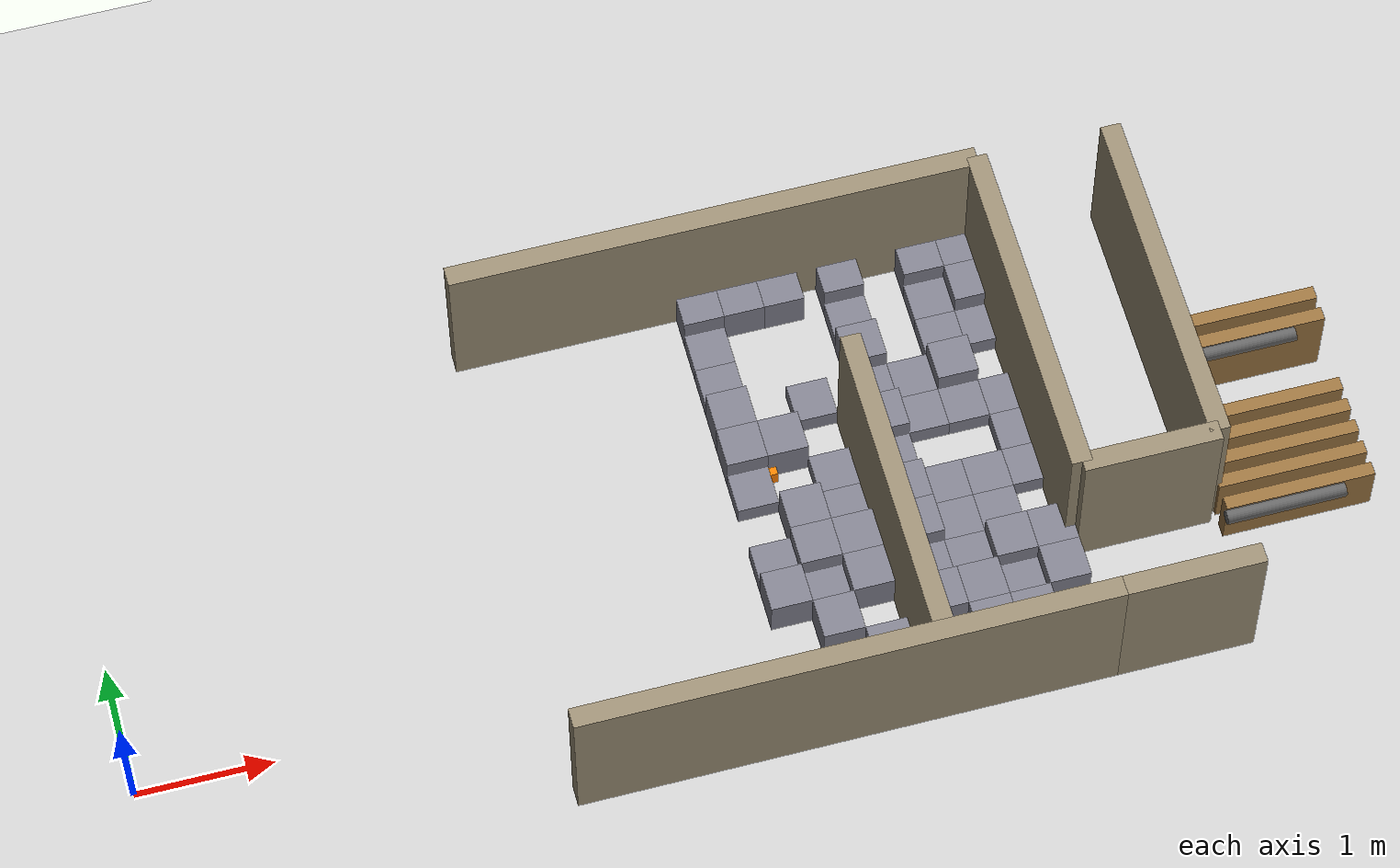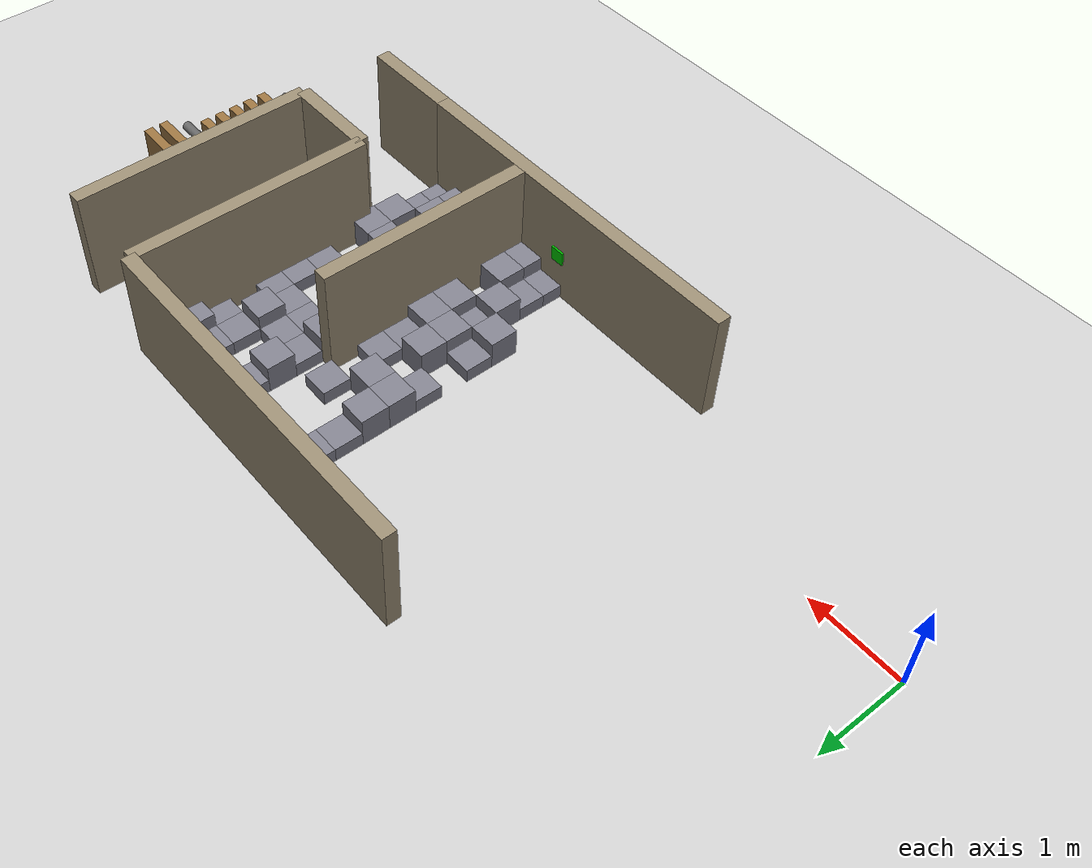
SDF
<sdf version="1.6">
 <world name="lrc_2026">
  <model name="ground_plane">
   <static>true</static>
   <link name="link">
    <collision name="collision">
     <geometry><plane><normal>0 0 1</normal><size>50 50</size></plane></geometry>
    </collision>
    <visual name="visual">
     <geometry><plane><normal>0 0 1</normal><size>50 50</size></plane></geometry>
     <material><ambient>0.8 0.8 0.8 1</ambient><diffuse>0.8 0.8 0.8 1</diffuse></material>
    </visual>
   </link>
  </model>
  <model name="LD_S">
   <static>true</static>
   <pose>4.9000 -0.8000 0.6000 0.0000 0.0000 0.0000</pose>
   <link name="link">
    <collision name="col"><geometry><box><size>3.9000 0.1500 1.2000</size></box></geometry></collision>
    <visual name="vis">
     <geometry><box><size>3.9000 0.1500 1.2000</size></box></geometry>
     <material><ambient>0.6 0.55 0.45 1.0</ambient><diffuse>0.6 0.55 0.45 1.0</diffuse></material>
    </visual>
   </link>
  </model>
  <model name="LD_N">
   <static>true</static>
   <pose>4.9000 2.8000 0.6000 0.0000 0.0000 0.0000</pose>
   <link name="link">
    <collision name="col"><geometry><box><size>3.9000 0.1500 1.2000</size></box></geometry></collision>
    <visual name="vis">
     <geometry><box><size>3.9000 0.1500 1.2000</size></box></geometry>
     <material><ambient>0.6 0.55 0.45 1.0</ambient><diffuse>0.6 0.55 0.45 1.0</diffuse></material>
    </visual>
   </link>
  </model>
  <model name="LD_E_b">
   <static>true</static>
   <pose>6.8500 1.5000 0.6000 0.0000 0.0000 0.0000</pose>
   <link name="link">
    <collision name="col"><geometry><box><size>0.1500 2.6000 1.2000</size></box></geometry></collision>
    <visual name="vis">
     <geometry><box><size>0.1500 2.6000 1.2000</size></box></geometry>
     <material><ambient>0.6 0.55 0.45 1.0</ambient><diffuse>0.6 0.55 0.45 1.0</diffuse></material>
    </visual>
   </link>
  </model>
  <model name="LD_d1">
   <static>true</static>
   <pose>5.5750 0.4000 0.6000 0.0000 0.0000 0.0000</pose>
   <link name="link">
    <collision name="col"><geometry><box><size>0.1500 2.4000 1.2000</size></box></geometry></collision>
    <visual name="vis">
     <geometry><box><size>0.1500 2.4000 1.2000</size></box></geometry>
     <material><ambient>0.6 0.55 0.45 1.0</ambient><diffuse>0.6 0.55 0.45 1.0</diffuse></material>
    </visual>
   </link>
  </model>
  <model name="sf_1_1_3">
   <static>true</static>
   <pose>4.7500 0.2500 0.1500 0.0000 0.0000 0.0000</pose>
   <link name="link">
    <collision name="col"><geometry><box><size>0.3000 0.3000 0.3000</size></box></geometry></collision>
    <visual name="vis">
     <geometry><box><size>0.3000 0.3000 0.3000</size></box></geometry>
     <material><ambient>0.5 0.5 0.55 1.0</ambient><diffuse>0.5 0.5 0.55 1.0</diffuse></material>
    </visual>
   </link>
  </model>
  <model name="sf_1_1_4">
   <static>true</static>
   <pose>4.7500 0.5500 0.0750 0.0000 0.0000 0.0000</pose>
   <link name="link">
    <collision name="col"><geometry><box><size>0.3000 0.3000 0.1500</size></box></geometry></collision>
    <visual name="vis">
     <geometry><box><size>0.3000 0.3000 0.1500</size></box></geometry>
     <material><ambient>0.5 0.5 0.55 1.0</ambient><diffuse>0.5 0.5 0.55 1.0</diffuse></material>
    </visual>
   </link>
  </model>
  <model name="sf_1_1_6">
   <static>true</static>
   <pose>4.7500 1.1500 0.0750 0.0000 0.0000 0.0000</pose>
   <link name="link">
    <collision name="col"><geometry><box><size>0.3000 0.3000 0.1500</size></box></geometry></collision>
    <visual name="vis">
     <geometry><box><size>0.3000 0.3000 0.1500</size></box></geometry>
     <material><ambient>0.5 0.5 0.55 1.0</ambient><diffuse>0.5 0.5 0.55 1.0</diffuse></material>
    </visual>
   </link>
  </model>
  <model name="sf_1_1_7">
   <static>true</static>
   <pose>4.7500 1.4500 0.1500 0.0000 0.0000 0.0000</pose>
   <link name="link">
    <collision name="col"><geometry><box><size>0.3000 0.3000 0.3000</size></box></geometry></collision>
    <visual name="vis">
     <geometry><box><size>0.3000 0.3000 0.3000</size></box></geometry>
     <material><ambient>0.5 0.5 0.55 1.0</ambient><diffuse>0.5 0.5 0.55 1.0</diffuse></material>
    </visual>
   </link>
  </model>
  <model name="sf_1_1_8">
   <static>true</static>
   <pose>4.7500 1.7500 0.1500 0.0000 0.0000 0.0000</pose>
   <link name="link">
    <collision name="col"><geometry><box><size>0.3000 0.3000 0.3000</size></box></geometry></collision>
    <visual name="vis">
     <geometry><box><size>0.3000 0.3000 0.3000</size></box></geometry>
     <material><ambient>0.5 0.5 0.55 1.0</ambient><diffuse>0.5 0.5 0.55 1.0</diffuse></material>
    </visual>
   </link>
  </model>
  <model name="sf_1_1_9">
   <static>true</static>
   <pose>4.7500 2.0500 0.0750 0.0000 0.0000 0.0000</pose>
   <link name="link">
    <collision name="col"><geometry><box><size>0.3000 0.3000 0.1500</size></box></geometry></collision>
    <visual name="vis">
     <geometry><box><size>0.3000 0.3000 0.1500</size></box></geometry>
     <material><ambient>0.5 0.5 0.55 1.0</ambient><diffuse>0.5 0.5 0.55 1.0</diffuse></material>
    </visual>
   </link>
  </model>
  <model name="sf_1_1_10">
   <static>true</static>
   <pose>4.7500 2.3500 0.0750 0.0000 0.0000 0.0000</pose>
   <link name="link">
    <collision name="col"><geometry><box><size>0.3000 0.3000 0.1500</size></box></geometry></collision>
    <visual name="vis">
     <geometry><box><size>0.3000 0.3000 0.1500</size></box></geometry>
     <material><ambient>0.5 0.5 0.55 1.0</ambient><diffuse>0.5 0.5 0.55 1.0</diffuse></material>
    </visual>
   </link>
  </model>
  <model name="sf_1_1_11">
   <static>true</static>
   <pose>4.7500 2.6500 0.1500 0.0000 0.0000 0.0000</pose>
   <link name="link">
    <collision name="col"><geometry><box><size>0.3000 0.3000 0.3000</size></box></geometry></collision>
    <visual name="vis">
     <geometry><box><size>0.3000 0.3000 0.3000</size></box></geometry>
     <material><ambient>0.5 0.5 0.55 1.0</ambient><diffuse>0.5 0.5 0.55 1.0</diffuse></material>
    </visual>
   </link>
  </model>
  <model name="sf_1_2_0">
   <static>true</static>
   <pose>5.0500 -0.6500 0.0750 0.0000 0.0000 0.0000</pose>
   <link name="link">
    <collision name="col"><geometry><box><size>0.3000 0.3000 0.1500</size></box></geometry></collision>
    <visual name="vis">
     <geometry><box><size>0.3000 0.3000 0.1500</size></box></geometry>
     <material><ambient>0.5 0.5 0.55 1.0</ambient><diffuse>0.5 0.5 0.55 1.0</diffuse></material>
    </visual>
   </link>
  </model>
  <model name="sf_1_2_1">
   <static>true</static>
   <pose>5.0500 -0.3500 0.0750 0.0000 0.0000 0.0000</pose>
   <link name="link">
    <collision name="col"><geometry><box><size>0.3000 0.3000 0.1500</size></box></geometry></collision>
    <visual name="vis">
     <geometry><box><size>0.3000 0.3000 0.1500</size></box></geometry>
     <material><ambient>0.5 0.5 0.55 1.0</ambient><diffuse>0.5 0.5 0.55 1.0</diffuse></material>
    </visual>
   </link>
  </model>
  <model name="sf_1_2_2">
   <static>true</static>
   <pose>5.0500 -0.0500 0.1500 0.0000 0.0000 0.0000</pose>
   <link name="link">
    <collision name="col"><geometry><box><size>0.3000 0.3000 0.3000</size></box></geometry></collision>
    <visual name="vis">
     <geometry><box><size>0.3000 0.3000 0.3000</size></box></geometry>
     <material><ambient>0.5 0.5 0.55 1.0</ambient><diffuse>0.5 0.5 0.55 1.0</diffuse></material>
    </visual>
   </link>
  </model>
  <model name="sf_1_2_3">
   <static>true</static>
   <pose>5.0500 0.2500 0.0750 0.0000 0.0000 0.0000</pose>
   <link name="link">
    <collision name="col"><geometry><box><size>0.3000 0.3000 0.1500</size></box></geometry></collision>
    <visual name="vis">
     <geometry><box><size>0.3000 0.3000 0.1500</size></box></geometry>
     <material><ambient>0.5 0.5 0.55 1.0</ambient><diffuse>0.5 0.5 0.55 1.0</diffuse></material>
    </visual>
   </link>
  </model>
  <model name="sf_1_2_4">
   <static>true</static>
   <pose>5.0500 0.5500 0.1500 0.0000 0.0000 0.0000</pose>
   <link name="link">
    <collision name="col"><geometry><box><size>0.3000 0.3000 0.3000</size></box></geometry></collision>
    <visual name="vis">
     <geometry><box><size>0.3000 0.3000 0.3000</size></box></geometry>
     <material><ambient>0.5 0.5 0.55 1.0</ambient><diffuse>0.5 0.5 0.55 1.0</diffuse></material>
    </visual>
   </link>
  </model>
  <model name="sf_1_2_5">
   <static>true</static>
   <pose>5.0500 0.8500 0.1500 0.0000 0.0000 0.0000</pose>
   <link name="link">
    <collision name="col"><geometry><box><size>0.3000 0.3000 0.3000</size></box></geometry></collision>
    <visual name="vis">
     <geometry><box><size>0.3000 0.3000 0.3000</size></box></geometry>
     <material><ambient>0.5 0.5 0.55 1.0</ambient><diffuse>0.5 0.5 0.55 1.0</diffuse></material>
    </visual>
   </link>
  </model>
  <model name="sf_1_2_7">
   <static>true</static>
   <pose>5.0500 1.4500 0.1500 0.0000 0.0000 0.0000</pose>
   <link name="link">
    <collision name="col"><geometry><box><size>0.3000 0.3000 0.3000</size></box></geometry></collision>
    <visual name="vis">
     <geometry><box><size>0.3000 0.3000 0.3000</size></box></geometry>
     <material><ambient>0.5 0.5 0.55 1.0</ambient><diffuse>0.5 0.5 0.55 1.0</diffuse></material>
    </visual>
   </link>
  </model>
  <model name="sf_1_2_11">
   <static>true</static>
   <pose>5.0500 2.6500 0.1500 0.0000 0.0000 0.0000</pose>
   <link name="link">
    <collision name="col"><geometry><box><size>0.3000 0.3000 0.3000</size></box></geometry></collision>
    <visual name="vis">
     <geometry><box><size>0.3000 0.3000 0.3000</size></box></geometry>
     <material><ambient>0.5 0.5 0.55 1.0</ambient><diffuse>0.5 0.5 0.55 1.0</diffuse></material>
    </visual>
   </link>
  </model>
  <model name="sf_1_3_0">
   <static>true</static>
   <pose>5.3500 -0.6500 0.1500 0.0000 0.0000 0.0000</pose>
   <link name="link">
    <collision name="col"><geometry><box><size>0.3000 0.3000 0.3000</size></box></geometry></collision>
    <visual name="vis">
     <geometry><box><size>0.3000 0.3000 0.3000</size></box></geometry>
     <material><ambient>0.5 0.5 0.55 1.0</ambient><diffuse>0.5 0.5 0.55 1.0</diffuse></material>
    </visual>
   </link>
  </model>
  <model name="sf_1_3_1">
   <static>true</static>
   <pose>5.3500 -0.3500 0.1500 0.0000 0.0000 0.0000</pose>
   <link name="link">
    <collision name="col"><geometry><box><size>0.3000 0.3000 0.3000</size></box></geometry></collision>
    <visual name="vis">
     <geometry><box><size>0.3000 0.3000 0.3000</size></box></geometry>
     <material><ambient>0.5 0.5 0.55 1.0</ambient><diffuse>0.5 0.5 0.55 1.0</diffuse></material>
    </visual>
   </link>
  </model>
  <model name="sf_1_3_3">
   <static>true</static>
   <pose>5.3500 0.2500 0.1500 0.0000 0.0000 0.0000</pose>
   <link name="link">
    <collision name="col"><geometry><box><size>0.3000 0.3000 0.3000</size></box></geometry></collision>
    <visual name="vis">
     <geometry><box><size>0.3000 0.3000 0.3000</size></box></geometry>
     <material><ambient>0.5 0.5 0.55 1.0</ambient><diffuse>0.5 0.5 0.55 1.0</diffuse></material>
    </visual>
   </link>
  </model>
  <model name="sf_1_3_4">
   <static>true</static>
   <pose>5.3500 0.5500 0.1500 0.0000 0.0000 0.0000</pose>
   <link name="link">
    <collision name="col"><geometry><box><size>0.3000 0.3000 0.3000</size></box></geometry></collision>
    <visual name="vis">
     <geometry><box><size>0.3000 0.3000 0.3000</size></box></geometry>
     <material><ambient>0.5 0.5 0.55 1.0</ambient><diffuse>0.5 0.5 0.55 1.0</diffuse></material>
    </visual>
   </link>
  </model>
  <model name="sf_1_3_5">
   <static>true</static>
   <pose>5.3500 0.8500 0.0750 0.0000 0.0000 0.0000</pose>
   <link name="link">
    <collision name="col"><geometry><box><size>0.3000 0.3000 0.1500</size></box></geometry></collision>
    <visual name="vis">
     <geometry><box><size>0.3000 0.3000 0.1500</size></box></geometry>
     <material><ambient>0.5 0.5 0.55 1.0</ambient><diffuse>0.5 0.5 0.55 1.0</diffuse></material>
    </visual>
   </link>
  </model>
  <model name="sf_1_3_6">
   <static>true</static>
   <pose>5.3500 1.1500 0.0750 0.0000 0.0000 0.0000</pose>
   <link name="link">
    <collision name="col"><geometry><box><size>0.3000 0.3000 0.1500</size></box></geometry></collision>
    <visual name="vis">
     <geometry><box><size>0.3000 0.3000 0.1500</size></box></geometry>
     <material><ambient>0.5 0.5 0.55 1.0</ambient><diffuse>0.5 0.5 0.55 1.0</diffuse></material>
    </visual>
   </link>
  </model>
  <model name="sf_1_3_8">
   <static>true</static>
   <pose>5.3500 1.7500 0.0750 0.0000 0.0000 0.0000</pose>
   <link name="link">
    <collision name="col"><geometry><box><size>0.3000 0.3000 0.1500</size></box></geometry></collision>
    <visual name="vis">
     <geometry><box><size>0.3000 0.3000 0.1500</size></box></geometry>
     <material><ambient>0.5 0.5 0.55 1.0</ambient><diffuse>0.5 0.5 0.55 1.0</diffuse></material>
    </visual>
   </link>
  </model>
  <model name="sf_1_3_11">
   <static>true</static>
   <pose>5.3500 2.6500 0.1500 0.0000 0.0000 0.0000</pose>
   <link name="link">
    <collision name="col"><geometry><box><size>0.3000 0.3000 0.3000</size></box></geometry></collision>
    <visual name="vis">
     <geometry><box><size>0.3000 0.3000 0.3000</size></box></geometry>
     <material><ambient>0.5 0.5 0.55 1.0</ambient><diffuse>0.5 0.5 0.55 1.0</diffuse></material>
    </visual>
   </link>
  </model>
  <model name="sf_2_0_0">
   <static>true</static>
   <pose>5.8000 -0.6500 0.1500 0.0000 0.0000 0.0000</pose>
   <link name="link">
    <collision name="col"><geometry><box><size>0.3000 0.3000 0.3000</size></box></geometry></collision>
    <visual name="vis">
     <geometry><box><size>0.3000 0.3000 0.3000</size></box></geometry>
     <material><ambient>0.5 0.5 0.55 1.0</ambient><diffuse>0.5 0.5 0.55 1.0</diffuse></material>
    </visual>
   </link>
  </model>
  <model name="sf_2_0_1">
   <static>true</static>
   <pose>5.8000 -0.3500 0.0750 0.0000 0.0000 0.0000</pose>
   <link name="link">
    <collision name="col"><geometry><box><size>0.3000 0.3000 0.1500</size></box></geometry></collision>
    <visual name="vis">
     <geometry><box><size>0.3000 0.3000 0.1500</size></box></geometry>
     <material><ambient>0.5 0.5 0.55 1.0</ambient><diffuse>0.5 0.5 0.55 1.0</diffuse></material>
    </visual>
   </link>
  </model>
  <model name="sf_2_0_2">
   <static>true</static>
   <pose>5.8000 -0.0500 0.1500 0.0000 0.0000 0.0000</pose>
   <link name="link">
    <collision name="col"><geometry><box><size>0.3000 0.3000 0.3000</size></box></geometry></collision>
    <visual name="vis">
     <geometry><box><size>0.3000 0.3000 0.3000</size></box></geometry>
     <material><ambient>0.5 0.5 0.55 1.0</ambient><diffuse>0.5 0.5 0.55 1.0</diffuse></material>
    </visual>
   </link>
  </model>
  <model name="sf_2_0_3">
   <static>true</static>
   <pose>5.8000 0.2500 0.0750 0.0000 0.0000 0.0000</pose>
   <link name="link">
    <collision name="col"><geometry><box><size>0.3000 0.3000 0.1500</size></box></geometry></collision>
    <visual name="vis">
     <geometry><box><size>0.3000 0.3000 0.1500</size></box></geometry>
     <material><ambient>0.5 0.5 0.55 1.0</ambient><diffuse>0.5 0.5 0.55 1.0</diffuse></material>
    </visual>
   </link>
  </model>
  <model name="sf_2_0_4">
   <static>true</static>
   <pose>5.8000 0.5500 0.1500 0.0000 0.0000 0.0000</pose>
   <link name="link">
    <collision name="col"><geometry><box><size>0.3000 0.3000 0.3000</size></box></geometry></collision>
    <visual name="vis">
     <geometry><box><size>0.3000 0.3000 0.3000</size></box></geometry>
     <material><ambient>0.5 0.5 0.55 1.0</ambient><diffuse>0.5 0.5 0.55 1.0</diffuse></material>
    </visual>
   </link>
  </model>
  <model name="sf_2_0_5">
   <static>true</static>
   <pose>5.8000 0.8500 0.1500 0.0000 0.0000 0.0000</pose>
   <link name="link">
    <collision name="col"><geometry><box><size>0.3000 0.3000 0.3000</size></box></geometry></collision>
    <visual name="vis">
     <geometry><box><size>0.3000 0.3000 0.3000</size></box></geometry>
     <material><ambient>0.5 0.5 0.55 1.0</ambient><diffuse>0.5 0.5 0.55 1.0</diffuse></material>
    </visual>
   </link>
  </model>
  <model name="sf_2_0_6">
   <static>true</static>
   <pose>5.8000 1.1500 0.0750 0.0000 0.0000 0.0000</pose>
   <link name="link">
    <collision name="col"><geometry><box><size>0.3000 0.3000 0.1500</size></box></geometry></collision>
    <visual name="vis">
     <geometry><box><size>0.3000 0.3000 0.1500</size></box></geometry>
     <material><ambient>0.5 0.5 0.55 1.0</ambient><diffuse>0.5 0.5 0.55 1.0</diffuse></material>
    </visual>
   </link>
  </model>
  <model name="sf_2_0_7">
   <static>true</static>
   <pose>5.8000 1.4500 0.1500 0.0000 0.0000 0.0000</pose>
   <link name="link">
    <collision name="col"><geometry><box><size>0.3000 0.3000 0.3000</size></box></geometry></collision>
    <visual name="vis">
     <geometry><box><size>0.3000 0.3000 0.3000</size></box></geometry>
     <material><ambient>0.5 0.5 0.55 1.0</ambient><diffuse>0.5 0.5 0.55 1.0</diffuse></material>
    </visual>
   </link>
  </model>
  <model name="sf_2_0_8">
   <static>true</static>
   <pose>5.8000 1.7500 0.0750 0.0000 0.0000 0.0000</pose>
   <link name="link">
    <collision name="col"><geometry><box><size>0.3000 0.3000 0.1500</size></box></geometry></collision>
    <visual name="vis">
     <geometry><box><size>0.3000 0.3000 0.1500</size></box></geometry>
     <material><ambient>0.5 0.5 0.55 1.0</ambient><diffuse>0.5 0.5 0.55 1.0</diffuse></material>
    </visual>
   </link>
  </model>
  <model name="sf_2_0_9">
   <static>true</static>
   <pose>5.8000 2.0500 0.1500 0.0000 0.0000 0.0000</pose>
   <link name="link">
    <collision name="col"><geometry><box><size>0.3000 0.3000 0.3000</size></box></geometry></collision>
    <visual name="vis">
     <geometry><box><size>0.3000 0.3000 0.3000</size></box></geometry>
     <material><ambient>0.5 0.5 0.55 1.0</ambient><diffuse>0.5 0.5 0.55 1.0</diffuse></material>
    </visual>
   </link>
  </model>
  <model name="sf_2_0_10">
   <static>true</static>
   <pose>5.8000 2.3500 0.0750 0.0000 0.0000 0.0000</pose>
   <link name="link">
    <collision name="col"><geometry><box><size>0.3000 0.3000 0.1500</size></box></geometry></collision>
    <visual name="vis">
     <geometry><box><size>0.3000 0.3000 0.1500</size></box></geometry>
     <material><ambient>0.5 0.5 0.55 1.0</ambient><diffuse>0.5 0.5 0.55 1.0</diffuse></material>
    </visual>
   </link>
  </model>
  <model name="sf_2_0_11">
   <static>true</static>
   <pose>5.8000 2.6500 0.1500 0.0000 0.0000 0.0000</pose>
   <link name="link">
    <collision name="col"><geometry><box><size>0.3000 0.3000 0.3000</size></box></geometry></collision>
    <visual name="vis">
     <geometry><box><size>0.3000 0.3000 0.3000</size></box></geometry>
     <material><ambient>0.5 0.5 0.55 1.0</ambient><diffuse>0.5 0.5 0.55 1.0</diffuse></material>
    </visual>
   </link>
  </model>
  <model name="sf_2_1_0">
   <static>true</static>
   <pose>6.1000 -0.6500 0.1500 0.0000 0.0000 0.0000</pose>
   <link name="link">
    <collision name="col"><geometry><box><size>0.3000 0.3000 0.3000</size></box></geometry></collision>
    <visual name="vis">
     <geometry><box><size>0.3000 0.3000 0.3000</size></box></geometry>
     <material><ambient>0.5 0.5 0.55 1.0</ambient><diffuse>0.5 0.5 0.55 1.0</diffuse></material>
    </visual>
   </link>
  </model>
  <model name="sf_2_1_1">
   <static>true</static>
   <pose>6.1000 -0.3500 0.1500 0.0000 0.0000 0.0000</pose>
   <link name="link">
    <collision name="col"><geometry><box><size>0.3000 0.3000 0.3000</size></box></geometry></collision>
    <visual name="vis">
     <geometry><box><size>0.3000 0.3000 0.3000</size></box></geometry>
     <material><ambient>0.5 0.5 0.55 1.0</ambient><diffuse>0.5 0.5 0.55 1.0</diffuse></material>
    </visual>
   </link>
  </model>
  <model name="sf_2_1_2">
   <static>true</static>
   <pose>6.1000 -0.0500 0.1500 0.0000 0.0000 0.0000</pose>
   <link name="link">
    <collision name="col"><geometry><box><size>0.3000 0.3000 0.3000</size></box></geometry></collision>
    <visual name="vis">
     <geometry><box><size>0.3000 0.3000 0.3000</size></box></geometry>
     <material><ambient>0.5 0.5 0.55 1.0</ambient><diffuse>0.5 0.5 0.55 1.0</diffuse></material>
    </visual>
   </link>
  </model>
  <model name="sf_2_1_3">
   <static>true</static>
   <pose>6.1000 0.2500 0.0750 0.0000 0.0000 0.0000</pose>
   <link name="link">
    <collision name="col"><geometry><box><size>0.3000 0.3000 0.1500</size></box></geometry></collision>
    <visual name="vis">
     <geometry><box><size>0.3000 0.3000 0.1500</size></box></geometry>
     <material><ambient>0.5 0.5 0.55 1.0</ambient><diffuse>0.5 0.5 0.55 1.0</diffuse></material>
    </visual>
   </link>
  </model>
  <model name="sf_2_1_4">
   <static>true</static>
   <pose>6.1000 0.5500 0.0750 0.0000 0.0000 0.0000</pose>
   <link name="link">
    <collision name="col"><geometry><box><size>0.3000 0.3000 0.1500</size></box></geometry></collision>
    <visual name="vis">
     <geometry><box><size>0.3000 0.3000 0.1500</size></box></geometry>
     <material><ambient>0.5 0.5 0.55 1.0</ambient><diffuse>0.5 0.5 0.55 1.0</diffuse></material>
    </visual>
   </link>
  </model>
  <model name="sf_2_1_5">
   <static>true</static>
   <pose>6.1000 0.8500 0.0750 0.0000 0.0000 0.0000</pose>
   <link name="link">
    <collision name="col"><geometry><box><size>0.3000 0.3000 0.1500</size></box></geometry></collision>
    <visual name="vis">
     <geometry><box><size>0.3000 0.3000 0.1500</size></box></geometry>
     <material><ambient>0.5 0.5 0.55 1.0</ambient><diffuse>0.5 0.5 0.55 1.0</diffuse></material>
    </visual>
   </link>
  </model>
  <model name="sf_2_1_7">
   <static>true</static>
   <pose>6.1000 1.4500 0.0750 0.0000 0.0000 0.0000</pose>
   <link name="link">
    <collision name="col"><geometry><box><size>0.3000 0.3000 0.1500</size></box></geometry></collision>
    <visual name="vis">
     <geometry><box><size>0.3000 0.3000 0.1500</size></box></geometry>
     <material><ambient>0.5 0.5 0.55 1.0</ambient><diffuse>0.5 0.5 0.55 1.0</diffuse></material>
    </visual>
   </link>
  </model>
  <model name="sf_2_1_8">
   <static>true</static>
   <pose>6.1000 1.7500 0.0750 0.0000 0.0000 0.0000</pose>
   <link name="link">
    <collision name="col"><geometry><box><size>0.3000 0.3000 0.1500</size></box></geometry></collision>
    <visual name="vis">
     <geometry><box><size>0.3000 0.3000 0.1500</size></box></geometry>
     <material><ambient>0.5 0.5 0.55 1.0</ambient><diffuse>0.5 0.5 0.55 1.0</diffuse></material>
    </visual>
   </link>
  </model>
  <model name="sf_2_2_0">
   <static>true</static>
   <pose>6.4000 -0.6500 0.1500 0.0000 0.0000 0.0000</pose>
   <link name="link">
    <collision name="col"><geometry><box><size>0.3000 0.3000 0.3000</size></box></geometry></collision>
    <visual name="vis">
     <geometry><box><size>0.3000 0.3000 0.3000</size></box></geometry>
     <material><ambient>0.5 0.5 0.55 1.0</ambient><diffuse>0.5 0.5 0.55 1.0</diffuse></material>
    </visual>
   </link>
  </model>
  <model name="sf_2_2_1">
   <static>true</static>
   <pose>6.4000 -0.3500 0.1500 0.0000 0.0000 0.0000</pose>
   <link name="link">
    <collision name="col"><geometry><box><size>0.3000 0.3000 0.3000</size></box></geometry></collision>
    <visual name="vis">
     <geometry><box><size>0.3000 0.3000 0.3000</size></box></geometry>
     <material><ambient>0.5 0.5 0.55 1.0</ambient><diffuse>0.5 0.5 0.55 1.0</diffuse></material>
    </visual>
   </link>
  </model>
  <model name="sf_2_2_2">
   <static>true</static>
   <pose>6.4000 -0.0500 0.0750 0.0000 0.0000 0.0000</pose>
   <link name="link">
    <collision name="col"><geometry><box><size>0.3000 0.3000 0.1500</size></box></geometry></collision>
    <visual name="vis">
     <geometry><box><size>0.3000 0.3000 0.1500</size></box></geometry>
     <material><ambient>0.5 0.5 0.55 1.0</ambient><diffuse>0.5 0.5 0.55 1.0</diffuse></material>
    </visual>
   </link>
  </model>
  <model name="sf_2_2_3">
   <static>true</static>
   <pose>6.4000 0.2500 0.1500 0.0000 0.0000 0.0000</pose>
   <link name="link">
    <collision name="col"><geometry><box><size>0.3000 0.3000 0.3000</size></box></geometry></collision>
    <visual name="vis">
     <geometry><box><size>0.3000 0.3000 0.3000</size></box></geometry>
     <material><ambient>0.5 0.5 0.55 1.0</ambient><diffuse>0.5 0.5 0.55 1.0</diffuse></material>
    </visual>
   </link>
  </model>
  <model name="sf_2_2_4">
   <static>true</static>
   <pose>6.4000 0.5500 0.0750 0.0000 0.0000 0.0000</pose>
   <link name="link">
    <collision name="col"><geometry><box><size>0.3000 0.3000 0.1500</size></box></geometry></collision>
    <visual name="vis">
     <geometry><box><size>0.3000 0.3000 0.1500</size></box></geometry>
     <material><ambient>0.5 0.5 0.55 1.0</ambient><diffuse>0.5 0.5 0.55 1.0</diffuse></material>
    </visual>
   </link>
  </model>
  <model name="sf_2_2_5">
   <static>true</static>
   <pose>6.4000 0.8500 0.0750 0.0000 0.0000 0.0000</pose>
   <link name="link">
    <collision name="col"><geometry><box><size>0.3000 0.3000 0.1500</size></box></geometry></collision>
    <visual name="vis">
     <geometry><box><size>0.3000 0.3000 0.1500</size></box></geometry>
     <material><ambient>0.5 0.5 0.55 1.0</ambient><diffuse>0.5 0.5 0.55 1.0</diffuse></material>
    </visual>
   </link>
  </model>
  <model name="sf_2_2_7">
   <static>true</static>
   <pose>6.4000 1.4500 0.0750 0.0000 0.0000 0.0000</pose>
   <link name="link">
    <collision name="col"><geometry><box><size>0.3000 0.3000 0.1500</size></box></geometry></collision>
    <visual name="vis">
     <geometry><box><size>0.3000 0.3000 0.1500</size></box></geometry>
     <material><ambient>0.5 0.5 0.55 1.0</ambient><diffuse>0.5 0.5 0.55 1.0</diffuse></material>
    </visual>
   </link>
  </model>
  <model name="sf_2_2_8">
   <static>true</static>
   <pose>6.4000 1.7500 0.1500 0.0000 0.0000 0.0000</pose>
   <link name="link">
    <collision name="col"><geometry><box><size>0.3000 0.3000 0.3000</size></box></geometry></collision>
    <visual name="vis">
     <geometry><box><size>0.3000 0.3000 0.3000</size></box></geometry>
     <material><ambient>0.5 0.5 0.55 1.0</ambient><diffuse>0.5 0.5 0.55 1.0</diffuse></material>
    </visual>
   </link>
  </model>
  <model name="sf_2_2_9">
   <static>true</static>
   <pose>6.4000 2.0500 0.0750 0.0000 0.0000 0.0000</pose>
   <link name="link">
    <collision name="col"><geometry><box><size>0.3000 0.3000 0.1500</size></box></geometry></collision>
    <visual name="vis">
     <geometry><box><size>0.3000 0.3000 0.1500</size></box></geometry>
     <material><ambient>0.5 0.5 0.55 1.0</ambient><diffuse>0.5 0.5 0.55 1.0</diffuse></material>
    </visual>
   </link>
  </model>
  <model name="sf_2_2_10">
   <static>true</static>
   <pose>6.4000 2.3500 0.0750 0.0000 0.0000 0.0000</pose>
   <link name="link">
    <collision name="col"><geometry><box><size>0.3000 0.3000 0.1500</size></box></geometry></collision>
    <visual name="vis">
     <geometry><box><size>0.3000 0.3000 0.1500</size></box></geometry>
     <material><ambient>0.5 0.5 0.55 1.0</ambient><diffuse>0.5 0.5 0.55 1.0</diffuse></material>
    </visual>
   </link>
  </model>
  <model name="sf_2_2_11">
   <static>true</static>
   <pose>6.4000 2.6500 0.1500 0.0000 0.0000 0.0000</pose>
   <link name="link">
    <collision name="col"><geometry><box><size>0.3000 0.3000 0.3000</size></box></geometry></collision>
    <visual name="vis">
     <geometry><box><size>0.3000 0.3000 0.3000</size></box></geometry>
     <material><ambient>0.5 0.5 0.55 1.0</ambient><diffuse>0.5 0.5 0.55 1.0</diffuse></material>
    </visual>
   </link>
  </model>
  <model name="sf_2_3_0">
   <static>true</static>
   <pose>6.7000 -0.6500 0.0750 0.0000 0.0000 0.0000</pose>
   <link name="link">
    <collision name="col"><geometry><box><size>0.3000 0.3000 0.1500</size></box></geometry></collision>
    <visual name="vis">
     <geometry><box><size>0.3000 0.3000 0.1500</size></box></geometry>
     <material><ambient>0.5 0.5 0.55 1.0</ambient><diffuse>0.5 0.5 0.55 1.0</diffuse></material>
    </visual>
   </link>
  </model>
  <model name="sf_2_3_1">
   <static>true</static>
   <pose>6.7000 -0.3500 0.0750 0.0000 0.0000 0.0000</pose>
   <link name="link">
    <collision name="col"><geometry><box><size>0.3000 0.3000 0.1500</size></box></geometry></collision>
    <visual name="vis">
     <geometry><box><size>0.3000 0.3000 0.1500</size></box></geometry>
     <material><ambient>0.5 0.5 0.55 1.0</ambient><diffuse>0.5 0.5 0.55 1.0</diffuse></material>
    </visual>
   </link>
  </model>
  <model name="sf_2_3_2">
   <static>true</static>
   <pose>6.7000 -0.0500 0.1500 0.0000 0.0000 0.0000</pose>
   <link name="link">
    <collision name="col"><geometry><box><size>0.3000 0.3000 0.3000</size></box></geometry></collision>
    <visual name="vis">
     <geometry><box><size>0.3000 0.3000 0.3000</size></box></geometry>
     <material><ambient>0.5 0.5 0.55 1.0</ambient><diffuse>0.5 0.5 0.55 1.0</diffuse></material>
    </visual>
   </link>
  </model>
  <model name="sf_2_3_3">
   <static>true</static>
   <pose>6.7000 0.2500 0.1500 0.0000 0.0000 0.0000</pose>
   <link name="link">
    <collision name="col"><geometry><box><size>0.3000 0.3000 0.3000</size></box></geometry></collision>
    <visual name="vis">
     <geometry><box><size>0.3000 0.3000 0.3000</size></box></geometry>
     <material><ambient>0.5 0.5 0.55 1.0</ambient><diffuse>0.5 0.5 0.55 1.0</diffuse></material>
    </visual>
   </link>
  </model>
  <model name="sf_2_3_5">
   <static>true</static>
   <pose>6.7000 0.8500 0.0750 0.0000 0.0000 0.0000</pose>
   <link name="link">
    <collision name="col"><geometry><box><size>0.3000 0.3000 0.1500</size></box></geometry></collision>
    <visual name="vis">
     <geometry><box><size>0.3000 0.3000 0.1500</size></box></geometry>
     <material><ambient>0.5 0.5 0.55 1.0</ambient><diffuse>0.5 0.5 0.55 1.0</diffuse></material>
    </visual>
   </link>
  </model>
  <model name="sf_2_3_6">
   <static>true</static>
   <pose>6.7000 1.1500 0.0750 0.0000 0.0000 0.0000</pose>
   <link name="link">
    <collision name="col"><geometry><box><size>0.3000 0.3000 0.1500</size></box></geometry></collision>
    <visual name="vis">
     <geometry><box><size>0.3000 0.3000 0.1500</size></box></geometry>
     <material><ambient>0.5 0.5 0.55 1.0</ambient><diffuse>0.5 0.5 0.55 1.0</diffuse></material>
    </visual>
   </link>
  </model>
  <model name="sf_2_3_7">
   <static>true</static>
   <pose>6.7000 1.4500 0.0750 0.0000 0.0000 0.0000</pose>
   <link name="link">
    <collision name="col"><geometry><box><size>0.3000 0.3000 0.1500</size></box></geometry></collision>
    <visual name="vis">
     <geometry><box><size>0.3000 0.3000 0.1500</size></box></geometry>
     <material><ambient>0.5 0.5 0.55 1.0</ambient><diffuse>0.5 0.5 0.55 1.0</diffuse></material>
    </visual>
   </link>
  </model>
  <model name="sf_2_3_9">
   <static>true</static>
   <pose>6.7000 2.0500 0.0750 0.0000 0.0000 0.0000</pose>
   <link name="link">
    <collision name="col"><geometry><box><size>0.3000 0.3000 0.1500</size></box></geometry></collision>
    <visual name="vis">
     <geometry><box><size>0.3000 0.3000 0.1500</size></box></geometry>
     <material><ambient>0.5 0.5 0.55 1.0</ambient><diffuse>0.5 0.5 0.55 1.0</diffuse></material>
    </visual>
   </link>
  </model>
  <model name="sf_2_3_10">
   <static>true</static>
   <pose>6.7000 2.3500 0.1500 0.0000 0.0000 0.0000</pose>
   <link name="link">
    <collision name="col"><geometry><box><size>0.3000 0.3000 0.3000</size></box></geometry></collision>
    <visual name="vis">
     <geometry><box><size>0.3000 0.3000 0.3000</size></box></geometry>
     <material><ambient>0.5 0.5 0.55 1.0</ambient><diffuse>0.5 0.5 0.55 1.0</diffuse></material>
    </visual>
   </link>
  </model>
  <model name="sf_2_3_11">
   <static>true</static>
   <pose>6.7000 2.6500 0.1500 0.0000 0.0000 0.0000</pose>
   <link name="link">
    <collision name="col"><geometry><box><size>0.3000 0.3000 0.3000</size></box></geometry></collision>
    <visual name="vis">
     <geometry><box><size>0.3000 0.3000 0.3000</size></box></geometry>
     <material><ambient>0.5 0.5 0.55 1.0</ambient><diffuse>0.5 0.5 0.55 1.0</diffuse></material>
    </visual>
   </link>
  </model>
  <model name="qr_D">
   <static>true</static>
   <pose>4.9000 -0.6500 0.6000 0.0000 0.0000 0.0000</pose>
   <link name="link">
    <collision name="col"><geometry><box><size>0.1500 0.0200 0.1500</size></box></geometry></collision>
    <visual name="vis">
     <geometry><box><size>0.1500 0.0200 0.1500</size></box></geometry>
     <material><ambient>0.0 0.8 0.0 1.0</ambient><diffuse>0.0 0.8 0.0 1.0</diffuse></material>
    </visual>
   </link>
  </model>
  <model name="haz_D">
   <static>true</static>
   <pose>4.9000 1.3000 0.0600 0.0000 0.0000 0.0000</pose>
   <link name="link">
    <collision name="col"><geometry><box><size>0.1200 0.1200 0.1200</size></box></geometry></collision>
    <visual name="vis">
     <geometry><box><size>0.1200 0.1200 0.1200</size></box></geometry>
     <material><ambient>1.0 0.5 0.0 1.0</ambient><diffuse>1.0 0.5 0.0 1.0</diffuse></material>
    </visual>
   </link>
  </model>
  <model name="LE_W_b">
   <static>true</static>
   <pose>7.8500 1.5000 0.6000 0.0000 0.0000 0.0000</pose>
   <link name="link">
    <collision name="col"><geometry><box><size>0.1500 2.6000 1.2000</size></box></geometry></collision>
    <visual name="vis">
     <geometry><box><size>0.1500 2.6000 1.2000</size></box></geometry>
     <material><ambient>0.6 0.55 0.45 1.0</ambient><diffuse>0.6 0.55 0.45 1.0</diffuse></material>
    </visual>
   </link>
  </model>
  <model name="pclimb_0_0_0">
   <static>true</static>
   <pose>8.4500 0.0400 0.2000 0.0000 0.0000 0.0000</pose>
   <link name="link">
    <collision name="col"><geometry><box><size>1.1000 0.1000 0.4000</size></box></geometry></collision>
    <visual name="vis">
     <geometry><box><size>1.1000 0.1000 0.4000</size></box></geometry>
     <material><ambient>0.6 0.45 0.25 1.0</ambient><diffuse>0.6 0.45 0.25 1.0</diffuse></material>
    </visual>
   </link>
  </model>
  <model name="pclimb_0_0_1">
   <static>true</static>
   <pose>8.4500 0.2200 0.2000 0.0000 0.0000 0.0000</pose>
   <link name="link">
    <collision name="col"><geometry><box><size>1.1000 0.1000 0.4000</size></box></geometry></collision>
    <visual name="vis">
     <geometry><box><size>1.1000 0.1000 0.4000</size></box></geometry>
     <material><ambient>0.6 0.45 0.25 1.0</ambient><diffuse>0.6 0.45 0.25 1.0</diffuse></material>
    </visual>
   </link>
  </model>
  <model name="pclimb_0_0_2">
   <static>true</static>
   <pose>8.4500 0.4000 0.2000 0.0000 0.0000 0.0000</pose>
   <link name="link">
    <collision name="col"><geometry><box><size>1.1000 0.1000 0.4000</size></box></geometry></collision>
    <visual name="vis">
     <geometry><box><size>1.1000 0.1000 0.4000</size></box></geometry>
     <material><ambient>0.6 0.45 0.25 1.0</ambient><diffuse>0.6 0.45 0.25 1.0</diffuse></material>
    </visual>
   </link>
  </model>
  <model name="pclimb_0_0_3">
   <static>true</static>
   <pose>8.4500 0.5800 0.2000 0.0000 0.0000 0.0000</pose>
   <link name="link">
    <collision name="col"><geometry><box><size>1.1000 0.1000 0.4000</size></box></geometry></collision>
    <visual name="vis">
     <geometry><box><size>1.1000 0.1000 0.4000</size></box></geometry>
     <material><ambient>0.6 0.45 0.25 1.0</ambient><diffuse>0.6 0.45 0.25 1.0</diffuse></material>
    </visual>
   </link>
  </model>
  <model name="pclimb_0_0_4">
   <static>true</static>
   <pose>8.4500 0.7600 0.2000 0.0000 0.0000 0.0000</pose>
   <link name="link">
    <collision name="col"><geometry><box><size>1.1000 0.1000 0.4000</size></box></geometry></collision>
    <visual name="vis">
     <geometry><box><size>1.1000 0.1000 0.4000</size></box></geometry>
     <material><ambient>0.6 0.45 0.25 1.0</ambient><diffuse>0.6 0.45 0.25 1.0</diffuse></material>
    </visual>
   </link>
  </model>
  <model name="cpipe_0_0_0">
   <static>true</static>
   <pose>8.3000 -0.1000 0.4500 0 1.5708 0</pose>
   <link name="link">
    <collision name="col">
     <geometry><cylinder><radius>0.05</radius><length>0.8800000000000001</length></cylinder></geometry>
    </collision>
    <visual name="vis">
     <geometry><cylinder><radius>0.05</radius><length>0.8800000000000001</length></cylinder></geometry>
     <material><ambient>0.4 0.4 0.4 1.0</ambient><diffuse>0.4 0.4 0.4 1.0</diffuse></material>
    </visual>
   </link>
  </model>
  <model name="pclimb_0_1_0">
   <static>true</static>
   <pose>8.4500 1.2400 0.3000 0.0000 0.0000 0.0000</pose>
   <link name="link">
    <collision name="col"><geometry><box><size>1.1000 0.1000 0.6000</size></box></geometry></collision>
    <visual name="vis">
     <geometry><box><size>1.1000 0.1000 0.6000</size></box></geometry>
     <material><ambient>0.6 0.45 0.25 1.0</ambient><diffuse>0.6 0.45 0.25 1.0</diffuse></material>
    </visual>
   </link>
  </model>
  <model name="pclimb_0_1_1">
   <static>true</static>
   <pose>8.4500 1.4200 0.3000 0.0000 0.0000 0.0000</pose>
   <link name="link">
    <collision name="col"><geometry><box><size>1.1000 0.1000 0.6000</size></box></geometry></collision>
    <visual name="vis">
     <geometry><box><size>1.1000 0.1000 0.6000</size></box></geometry>
     <material><ambient>0.6 0.45 0.25 1.0</ambient><diffuse>0.6 0.45 0.25 1.0</diffuse></material>
    </visual>
   </link>
  </model>
  <model name="cpipe_0_1_0">
   <static>true</static>
   <pose>8.3000 1.1000 0.6500 0 1.5708 0</pose>
   <link name="link">
    <collision name="col">
     <geometry><cylinder><radius>0.05</radius><length>0.8800000000000001</length></cylinder></geometry>
    </collision>
    <visual name="vis">
     <geometry><cylinder><radius>0.05</radius><length>0.8800000000000001</length></cylinder></geometry>
     <material><ambient>0.4 0.4 0.4 1.0</ambient><diffuse>0.4 0.4 0.4 1.0</diffuse></material>
    </visual>
   </link>
  </model>
  <model name="cor3_S">
   <static>true</static>
   <pose>7.3500 -0.8000 0.6000 0.0000 0.0000 0.0000</pose>
   <link name="link">
    <collision name="col"><geometry><box><size>1.0000 0.1500 1.2000</size></box></geometry></collision>
    <visual name="vis">
     <geometry><box><size>1.0000 0.1500 1.2000</size></box></geometry>
     <material><ambient>0.6 0.55 0.45 1.0</ambient><diffuse>0.6 0.55 0.45 1.0</diffuse></material>
    </visual>
   </link>
  </model>
  <model name="cor3_N">
   <static>true</static>
   <pose>7.3500 0.2000 0.6000 0.0000 0.0000 0.0000</pose>
   <link name="link">
    <collision name="col"><geometry><box><size>1.0000 0.1500 1.2000</size></box></geometry></collision>
    <visual name="vis">
     <geometry><box><size>1.0000 0.1500 1.2000</size></box></geometry>
     <material><ambient>0.6 0.55 0.45 1.0</ambient><diffuse>0.6 0.55 0.45 1.0</diffuse></material>
    </visual>
   </link>
  </model>
 </world>
</sdf>
